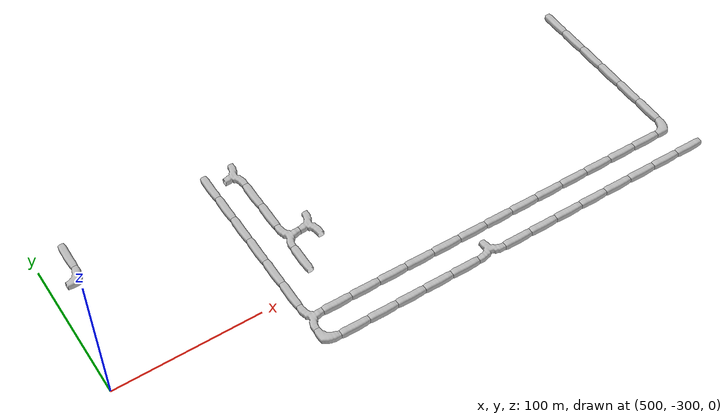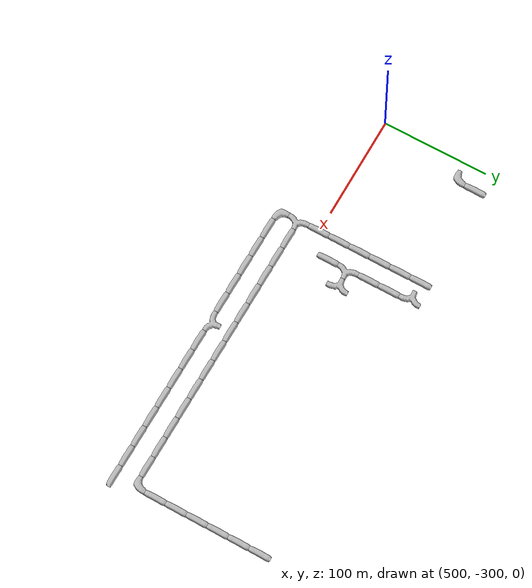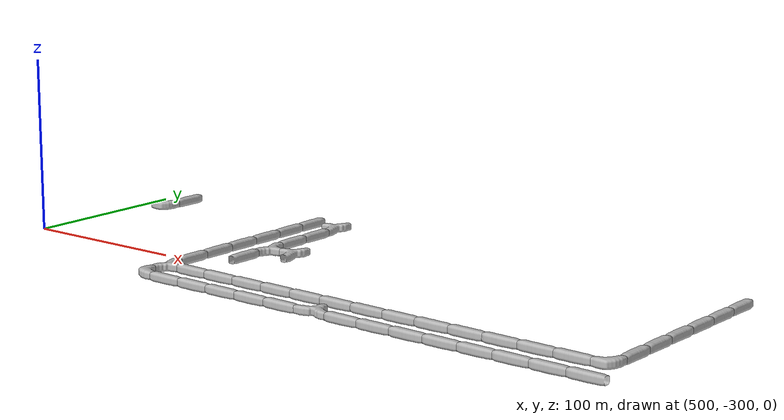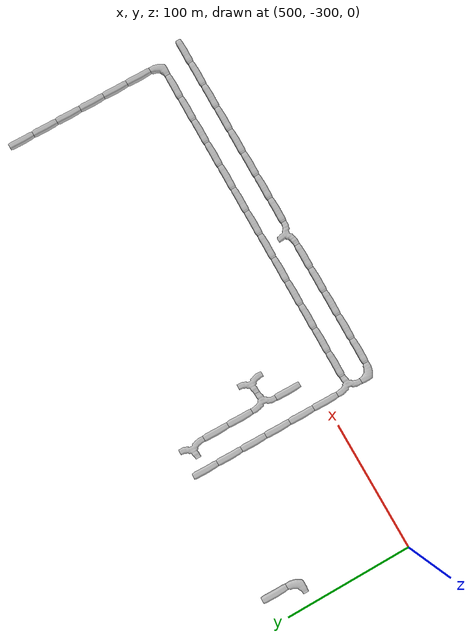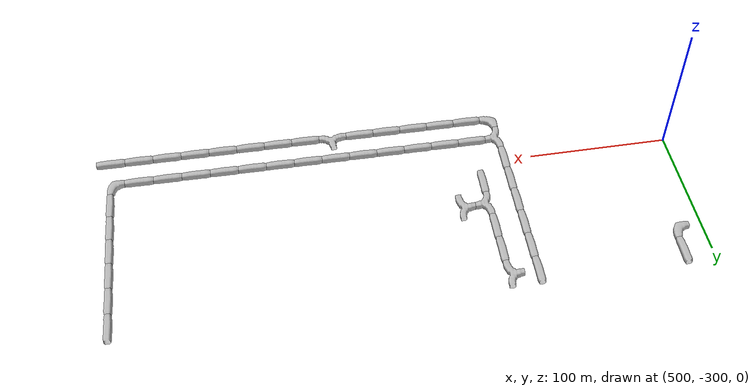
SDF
<sdf version="1.6">
 <world name="cave_16000_4">
  <include>
   <static>true</static>
   <name>cave_45_-10</name>
   <pose>900 -200 0 0 0 0.0</pose>
   <uri>model://cave_straight_20m</uri>
  </include>
  <include>
   <static>true</static>
   <name>cave_45_-11</name>
   <pose>900 -220 0 0 0 0.0</pose>
   <uri>model://cave_straight_20m</uri>
  </include>
  <include>
   <static>true</static>
   <name>cave_45_-12</name>
   <pose>900 -240 0 0 0 0.0</pose>
   <uri>model://cave_straight_20m</uri>
  </include>
  <include>
   <static>true</static>
   <name>cave_45_-13</name>
   <pose>900 -260 0 0 0 0.0</pose>
   <uri>model://cave_straight_20m</uri>
  </include>
  <include>
   <static>true</static>
   <name>cave_45_-14</name>
   <pose>900 -280 0 0 0 0.0</pose>
   <uri>model://cave_straight_20m</uri>
  </include>
  <include>
   <static>true</static>
   <name>cave_45_-15</name>
   <pose>900 -300 0 0 0 0.0</pose>
   <uri>model://cave_straight_20m</uri>
  </include>
  <include>
   <static>true</static>
   <name>cave_45_-16</name>
   <pose>900 -320 0 0 0 1.5707963267948966</pose>
   <uri>model://cave_L_20m</uri>
  </include>
  <include>
   <static>true</static>
   <name>cave_44_-16</name>
   <pose>880 -320 0 0 0 1.5707963267948966</pose>
   <uri>model://cave_straight_20m</uri>
  </include>
  <include>
   <static>true</static>
   <name>cave_43_-16</name>
   <pose>860 -320 0 0 0 1.5707963267948966</pose>
   <uri>model://cave_straight_20m</uri>
  </include>
  <include>
   <static>true</static>
   <name>cave_42_-16</name>
   <pose>840 -320 0 0 0 1.5707963267948966</pose>
   <uri>model://cave_straight_20m</uri>
  </include>
  <include>
   <static>true</static>
   <name>cave_41_-16</name>
   <pose>820 -320 0 0 0 1.5707963267948966</pose>
   <uri>model://cave_straight_20m</uri>
  </include>
  <include>
   <static>true</static>
   <name>cave_40_-16</name>
   <pose>800 -320 0 0 0 1.5707963267948966</pose>
   <uri>model://cave_straight_20m</uri>
  </include>
  <include>
   <static>true</static>
   <name>cave_39_-16</name>
   <pose>780 -320 0 0 0 1.5707963267948966</pose>
   <uri>model://cave_straight_20m</uri>
  </include>
  <include>
   <static>true</static>
   <name>cave_38_-16</name>
   <pose>760 -320 0 0 0 1.5707963267948966</pose>
   <uri>model://cave_straight_20m</uri>
  </include>
  <include>
   <static>true</static>
   <name>cave_37_-16</name>
   <pose>740 -320 0 0 0 1.5707963267948966</pose>
   <uri>model://cave_straight_20m</uri>
  </include>
  <include>
   <static>true</static>
   <name>cave_36_-16</name>
   <pose>720 -320 0 0 0 1.5707963267948966</pose>
   <uri>model://cave_straight_20m</uri>
  </include>
  <include>
   <static>true</static>
   <name>cave_35_-16</name>
   <pose>700 -320 0 0 0 1.5707963267948966</pose>
   <uri>model://cave_straight_20m</uri>
  </include>
  <include>
   <static>true</static>
   <name>cave_34_-16</name>
   <pose>680 -320 0 0 0 1.5707963267948966</pose>
   <uri>model://cave_straight_20m</uri>
  </include>
  <include>
   <static>true</static>
   <name>cave_33_-16</name>
   <pose>660 -320 0 0 0 1.5707963267948966</pose>
   <uri>model://cave_straight_20m</uri>
  </include>
  <include>
   <static>true</static>
   <name>cave_32_-16</name>
   <pose>640 -320 0 0 0 1.5707963267948966</pose>
   <uri>model://cave_straight_20m</uri>
  </include>
  <include>
   <static>true</static>
   <name>cave_31_-16</name>
   <pose>620 -320 0 0 0 -1.5707963267948966</pose>
   <uri>model://cave_3way_20m</uri>
  </include>
  <include>
   <static>true</static>
   <name>cave_31_-17</name>
   <pose>620 -340 0 0 0 0.0</pose>
   <uri>model://cave_L_20m</uri>
  </include>
  <include>
   <static>true</static>
   <name>cave_32_-17</name>
   <pose>640 -340 0 0 0 1.5707963267948966</pose>
   <uri>model://cave_straight_20m</uri>
  </include>
  <include>
   <static>true</static>
   <name>cave_33_-17</name>
   <pose>660 -340 0 0 0 1.5707963267948966</pose>
   <uri>model://cave_straight_20m</uri>
  </include>
  <include>
   <static>true</static>
   <name>cave_34_-17</name>
   <pose>680 -340 0 0 0 1.5707963267948966</pose>
   <uri>model://cave_straight_20m</uri>
  </include>
  <include>
   <static>true</static>
   <name>cave_35_-17</name>
   <pose>700 -340 0 0 0 1.5707963267948966</pose>
   <uri>model://cave_straight_20m</uri>
  </include>
  <include>
   <static>true</static>
   <name>cave_36_-17</name>
   <pose>720 -340 0 0 0 1.5707963267948966</pose>
   <uri>model://cave_straight_20m</uri>
  </include>
  <include>
   <static>true</static>
   <name>cave_37_-17</name>
   <pose>740 -340 0 0 0 0.0</pose>
   <uri>model://cave_3way_20m</uri>
  </include>
  <include>
   <static>true</static>
   <name>cave_38_-17</name>
   <pose>760 -340 0 0 0 1.5707963267948966</pose>
   <uri>model://cave_straight_20m</uri>
  </include>
  <include>
   <static>true</static>
   <name>cave_39_-17</name>
   <pose>780 -340 0 0 0 1.5707963267948966</pose>
   <uri>model://cave_straight_20m</uri>
  </include>
  <include>
   <static>true</static>
   <name>cave_40_-17</name>
   <pose>800 -340 0 0 0 1.5707963267948966</pose>
   <uri>model://cave_straight_20m</uri>
  </include>
  <include>
   <static>true</static>
   <name>cave_41_-17</name>
   <pose>820 -340 0 0 0 1.5707963267948966</pose>
   <uri>model://cave_straight_20m</uri>
  </include>
  <include>
   <static>true</static>
   <name>cave_42_-17</name>
   <pose>840 -340 0 0 0 1.5707963267948966</pose>
   <uri>model://cave_straight_20m</uri>
  </include>
  <include>
   <static>true</static>
   <name>cave_43_-17</name>
   <pose>860 -340 0 0 0 1.5707963267948966</pose>
   <uri>model://cave_straight_20m</uri>
  </include>
  <include>
   <static>true</static>
   <name>cave_44_-17</name>
   <pose>880 -340 0 0 0 1.5707963267948966</pose>
   <uri>model://cave_straight_20m</uri>
  </include>
  <include>
   <static>true</static>
   <name>cave_45_-17</name>
   <pose>900 -340 0 0 0 1.5707963267948966</pose>
   <uri>model://cave_straight_20m</uri>
  </include>
  <include>
   <static>true</static>
   <name>cave_31_-15</name>
   <pose>620 -300 0 0 0 0.0</pose>
   <uri>model://cave_straight_20m</uri>
  </include>
  <include>
   <static>true</static>
   <name>cave_31_-14</name>
   <pose>620 -280 0 0 0 0.0</pose>
   <uri>model://cave_straight_20m</uri>
  </include>
  <include>
   <static>true</static>
   <name>cave_31_-13</name>
   <pose>620 -260 0 0 0 0.0</pose>
   <uri>model://cave_straight_20m</uri>
  </include>
  <include>
   <static>true</static>
   <name>cave_31_-12</name>
   <pose>620 -240 0 0 0 0.0</pose>
   <uri>model://cave_straight_20m</uri>
  </include>
  <include>
   <static>true</static>
   <name>cave_31_-11</name>
   <pose>620 -220 0 0 0 0.0</pose>
   <uri>model://cave_straight_20m</uri>
  </include>
  <include>
   <static>true</static>
   <name>cave_31_-10</name>
   <pose>620 -200 0 0 0 0.0</pose>
   <uri>model://cave_straight_20m</uri>
  </include>
  <include>
   <static>true</static>
   <name>cave_32_-10</name>
   <pose>640 -200 0 0 0 1.5707963267948966</pose>
   <uri>model://cave_3way_20m</uri>
  </include>
  <include>
   <static>true</static>
   <name>cave_32_-11</name>
   <pose>640 -220 0 0 0 0.0</pose>
   <uri>model://cave_straight_20m</uri>
  </include>
  <include>
   <static>true</static>
   <name>cave_32_-12</name>
   <pose>640 -240 0 0 0 0.0</pose>
   <uri>model://cave_straight_20m</uri>
  </include>
  <include>
   <static>true</static>
   <name>cave_32_-13</name>
   <pose>640 -260 0 0 0 -1.5707963267948966</pose>
   <uri>model://cave_3way_20m</uri>
  </include>
  <include>
   <static>true</static>
   <name>cave_33_-13</name>
   <pose>660 -260 0 0 0 1.5707963267948966</pose>
   <uri>model://cave_3way_20m</uri>
  </include>
  <include>
   <static>true</static>
   <name>cave_32_-14</name>
   <pose>640 -280 0 0 0 0.0</pose>
   <uri>model://cave_straight_20m</uri>
  </include>
  <include>
   <static>true</static>
   <name>cave_26_-10</name>
   <pose>520 -200 0 0 0 0.0</pose>
   <uri>model://cave_straight_20m</uri>
  </include>
  <include>
   <static>true</static>
   <name>cave_26_-11</name>
   <pose>520 -220 0 0 0 1.5707963267948966</pose>
   <uri>model://cave_L_20m</uri>
  </include>
 </world>
</sdf>
